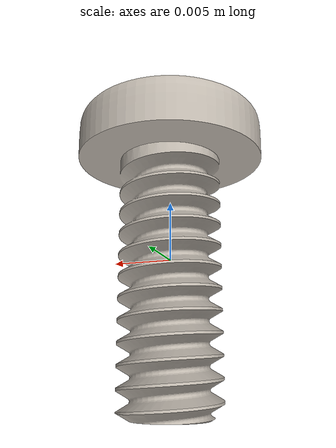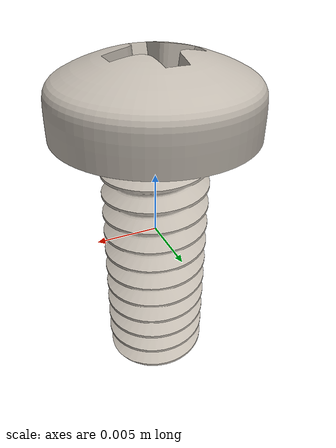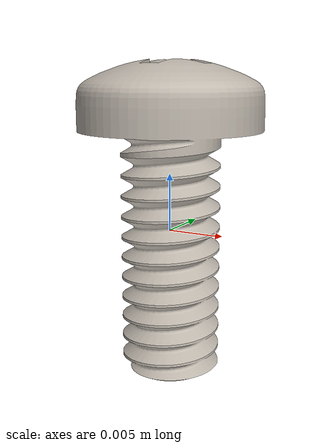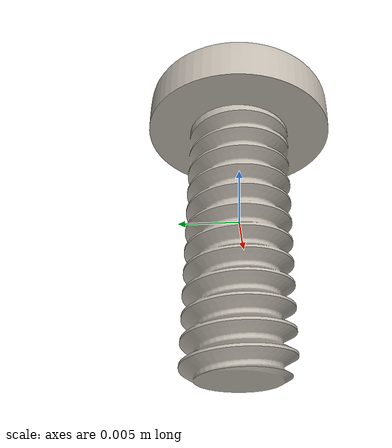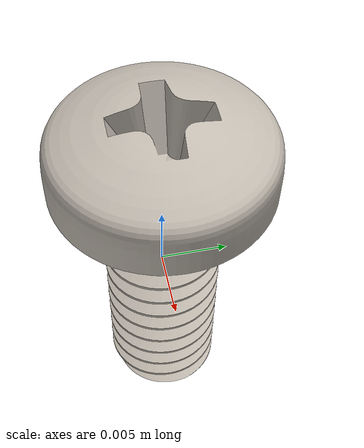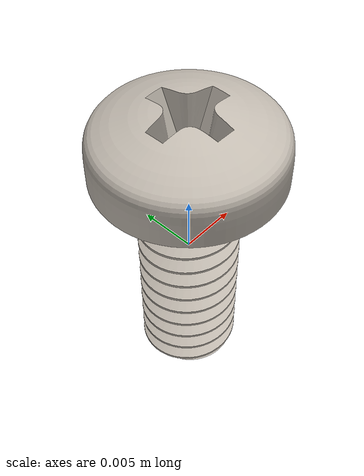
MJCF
<?xml version="1.0" encoding="UTF-8"?>
<mujoco model="panhead_philips">
  <asset>
    <texture type="2d" file="textures/metal.png" name="metal_tex"/>
    <material name="metal_mat" texture="metal_tex" specular="0.9" shininess="0.7" reflectance="0.25"/>
    <mesh name="panhead_philips_mesh" file="meshes/panhead_philips.stl"/>
  </asset>
  <worldbody>
    <body name="panhead_philips" pos="0 0 0">
      <freejoint name="panhead_philips_joint"/>
      <geom name="panhead_philips_visual" type="mesh" mesh="panhead_philips_mesh"
            material="metal_mat" group="1" contype="0" conaffinity="0"/>
      <geom name="panhead_philips_col" type="cylinder" group="3"
            size="0.007936 0.0136716"
            pos="0 0 0.000899886" quat="1 0 0 0"
            mass="0.001" friction="1.0 0.05 0.001" condim="4"/>
    </body>
  </worldbody>
</mujoco>
